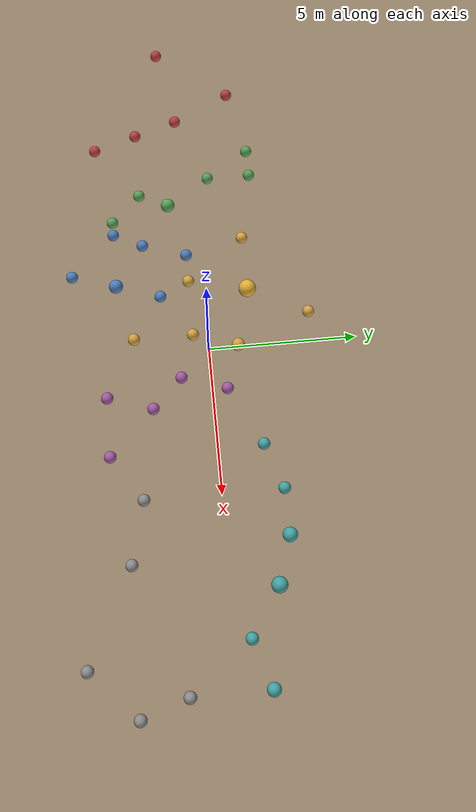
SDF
<?xml version="1.0" ?>
<sdf version="1.8">
  <world name="default">
    <physics name="1ms" type="ignored">
      <max_step_size>0.001</max_step_size>
      <real_time_factor>1.0</real_time_factor>
    </physics>

    <plugin filename="gz-sim-physics-system" name="gz::sim::systems::Physics"></plugin>
    <plugin filename="gz-sim-user-commands-system" name="gz::sim::systems::UserCommands"></plugin>
    <plugin filename="gz-sim-scene-broadcaster-system" name="gz::sim::systems::SceneBroadcaster"></plugin>

    <scene>
      <ambient>0.6 0.6 0.65 1</ambient>
      <background>0.7 0.8 0.9 1</background>
      <sky>
        <clouds>
          <speed>0.12</speed>
        </clouds>
      </sky>
    </scene>

    <light type="directional" name="sun">
      <cast_shadows>true</cast_shadows>
      <pose>0 0 20 0 0 0</pose>
      <diffuse>0.9 0.88 0.8 1</diffuse>
      <specular>0.3 0.3 0.28 1</specular>
      <attenuation>
        <range>1000</range>
        <constant>0.9</constant>
        <linear>0.01</linear>
        <quadratic>0.001</quadratic>
      </attenuation>
      <direction>-0.35 0.25 -0.9</direction>
    </light>

    <model name="ground_plane">
      <static>true</static>
      <link name="link">
        <collision name="collision">
          <geometry>
            <plane>
              <normal>0 0 1</normal>
              <size>100 100</size>
            </plane>
          </geometry>
        </collision>
        <visual name="visual">
          <geometry>
            <plane>
              <normal>0 0 1</normal>
              <size>100 100</size>
            </plane>
          </geometry>
          <material>
            <ambient>0.55 0.48 0.38 1</ambient>
            <diffuse>0.60 0.52 0.42 1</diffuse>
            <specular>0.05 0.05 0.05 1</specular>
          </material>
        </visual>
      </link>
    </model>

    <model name="Gambela">
      <pose>-12.0 -1.0 0.2 0 0 0</pose>
      <static>true</static>
      <link name="link">
        <visual name="sphere">
          <geometry>
            <sphere><radius>0.2</radius></sphere>
          </geometry>
          <material>
            <ambient>0.75 0.25 0.25 1</ambient>
            <diffuse>0.75 0.25 0.25 1</diffuse>
            <specular>0.3 0.3 0.3 1</specular>
          </material>
        </visual>
      </link>
    </model>

    <model name="Dembi_Dollo">
      <pose>-10.0 1.5 0.2 0 0 0</pose>
      <static>true</static>
      <link name="link">
        <visual name="sphere">
          <geometry>
            <sphere><radius>0.2</radius></sphere>
          </geometry>
          <material>
            <ambient>0.75 0.25 0.25 1</ambient>
            <diffuse>0.75 0.25 0.25 1</diffuse>
            <specular>0.3 0.3 0.3 1</specular>
          </material>
        </visual>
      </link>
    </model>

    <model name="Gore">
      <pose>-9.0 -0.5 0.2 0 0 0</pose>
      <static>true</static>
      <link name="link">
        <visual name="sphere">
          <geometry>
            <sphere><radius>0.2</radius></sphere>
          </geometry>
          <material>
            <ambient>0.75 0.25 0.25 1</ambient>
            <diffuse>0.75 0.25 0.25 1</diffuse>
            <specular>0.3 0.3 0.3 1</specular>
          </material>
        </visual>
      </link>
    </model>

    <model name="Tepi">
      <pose>-8.5 -2.0 0.2 0 0 0</pose>
      <static>true</static>
      <link name="link">
        <visual name="sphere">
          <geometry>
            <sphere><radius>0.2</radius></sphere>
          </geometry>
          <material>
            <ambient>0.75 0.25 0.25 1</ambient>
            <diffuse>0.75 0.25 0.25 1</diffuse>
            <specular>0.3 0.3 0.3 1</specular>
          </material>
        </visual>
      </link>
    </model>

    <model name="Mezan_Teferi">
      <pose>-8.0 -3.5 0.2 0 0 0</pose>
      <static>true</static>
      <link name="link">
        <visual name="sphere">
          <geometry>
            <sphere><radius>0.2</radius></sphere>
          </geometry>
          <material>
            <ambient>0.75 0.25 0.25 1</ambient>
            <diffuse>0.75 0.25 0.25 1</diffuse>
            <specular>0.3 0.3 0.3 1</specular>
          </material>
        </visual>
      </link>
    </model>

    <model name="Gimbi">
      <pose>-7.5 2.0 0.2 0 0 0</pose>
      <static>true</static>
      <link name="link">
        <visual name="sphere">
          <geometry>
            <sphere><radius>0.2</radius></sphere>
          </geometry>
          <material>
            <ambient>0.35 0.65 0.35 1</ambient>
            <diffuse>0.35 0.65 0.35 1</diffuse>
            <specular>0.3 0.3 0.3 1</specular>
          </material>
        </visual>
      </link>
    </model>

    <model name="Nekemte">
      <pose>-6.5 2.0 0.2 0 0 0</pose>
      <static>true</static>
      <link name="link">
        <visual name="sphere">
          <geometry>
            <sphere><radius>0.2</radius></sphere>
          </geometry>
          <material>
            <ambient>0.35 0.65 0.35 1</ambient>
            <diffuse>0.35 0.65 0.35 1</diffuse>
            <specular>0.3 0.3 0.3 1</specular>
          </material>
        </visual>
      </link>
    </model>

    <model name="Bedelle">
      <pose>-6.5 0.5 0.2 0 0 0</pose>
      <static>true</static>
      <link name="link">
        <visual name="sphere">
          <geometry>
            <sphere><radius>0.2</radius></sphere>
          </geometry>
          <material>
            <ambient>0.35 0.65 0.35 1</ambient>
            <diffuse>0.35 0.65 0.35 1</diffuse>
            <specular>0.3 0.3 0.3 1</specular>
          </material>
        </visual>
      </link>
    </model>

    <model name="Jimma">
      <pose>-5.5 -1.0 0.24 0 0 0</pose>
      <static>true</static>
      <link name="link">
        <visual name="sphere">
          <geometry>
            <sphere><radius>0.24</radius></sphere>
          </geometry>
          <material>
            <ambient>0.35 0.65 0.35 1</ambient>
            <diffuse>0.35 0.65 0.35 1</diffuse>
            <specular>0.3 0.3 0.3 1</specular>
          </material>
        </visual>
      </link>
    </model>

    <model name="Bonga">
      <pose>-6.0 -2.0 0.2 0 0 0</pose>
      <static>true</static>
      <link name="link">
        <visual name="sphere">
          <geometry>
            <sphere><radius>0.2</radius></sphere>
          </geometry>
          <material>
            <ambient>0.35 0.65 0.35 1</ambient>
            <diffuse>0.35 0.65 0.35 1</diffuse>
            <specular>0.3 0.3 0.3 1</specular>
          </material>
        </visual>
      </link>
    </model>

    <model name="Dawro">
      <pose>-5.0 -3.0 0.2 0 0 0</pose>
      <static>true</static>
      <link name="link">
        <visual name="sphere">
          <geometry>
            <sphere><radius>0.2</radius></sphere>
          </geometry>
          <material>
            <ambient>0.35 0.65 0.35 1</ambient>
            <diffuse>0.35 0.65 0.35 1</diffuse>
            <specular>0.3 0.3 0.3 1</specular>
          </material>
        </visual>
      </link>
    </model>

    <model name="Wolkite">
      <pose>-3.5 -0.5 0.2 0 0 0</pose>
      <static>true</static>
      <link name="link">
        <visual name="sphere">
          <geometry>
            <sphere><radius>0.2</radius></sphere>
          </geometry>
          <material>
            <ambient>0.3 0.5 0.75 1</ambient>
            <diffuse>0.3 0.5 0.75 1</diffuse>
            <specular>0.3 0.3 0.3 1</specular>
          </material>
        </visual>
      </link>
    </model>

    <model name="Hossana">
      <pose>-4.0 -2.0 0.2 0 0 0</pose>
      <static>true</static>
      <link name="link">
        <visual name="sphere">
          <geometry>
            <sphere><radius>0.2</radius></sphere>
          </geometry>
          <material>
            <ambient>0.3 0.5 0.75 1</ambient>
            <diffuse>0.3 0.5 0.75 1</diffuse>
            <specular>0.3 0.3 0.3 1</specular>
          </material>
        </visual>
      </link>
    </model>

    <model name="Wolait_Sodo">
      <pose>-4.5 -3.0 0.2 0 0 0</pose>
      <static>true</static>
      <link name="link">
        <visual name="sphere">
          <geometry>
            <sphere><radius>0.2</radius></sphere>
          </geometry>
          <material>
            <ambient>0.3 0.5 0.75 1</ambient>
            <diffuse>0.3 0.5 0.75 1</diffuse>
            <specular>0.3 0.3 0.3 1</specular>
          </material>
        </visual>
      </link>
    </model>

    <model name="Dilla">
      <pose>-3.0 -4.5 0.2 0 0 0</pose>
      <static>true</static>
      <link name="link">
        <visual name="sphere">
          <geometry>
            <sphere><radius>0.2</radius></sphere>
          </geometry>
          <material>
            <ambient>0.3 0.5 0.75 1</ambient>
            <diffuse>0.3 0.5 0.75 1</diffuse>
            <specular>0.3 0.3 0.3 1</specular>
          </material>
        </visual>
      </link>
    </model>

    <model name="Ambo">
      <pose>-4.0 1.5 0.2 0 0 0</pose>
      <static>true</static>
      <link name="link">
        <visual name="sphere">
          <geometry>
            <sphere><radius>0.2</radius></sphere>
          </geometry>
          <material>
            <ambient>0.85 0.65 0.25 1</ambient>
            <diffuse>0.85 0.65 0.25 1</diffuse>
            <specular>0.3 0.3 0.3 1</specular>
          </material>
        </visual>
      </link>
    </model>

    <model name="Addis_Ababa">
      <pose>-2.0 1.5 0.30000000000000004 0 0 0</pose>
      <static>true</static>
      <link name="link">
        <visual name="sphere">
          <geometry>
            <sphere><radius>0.30000000000000004</radius></sphere>
          </geometry>
          <material>
            <ambient>0.9 0.7 0.2 1</ambient>
            <diffuse>0.9 0.7 0.2 1</diffuse>
            <specular>0.3 0.3 0.3 1</specular>
          </material>
        </visual>
      </link>
    </model>

    <model name="Debra_Birhan">
      <pose>-1.0 3.5 0.2 0 0 0</pose>
      <static>true</static>
      <link name="link">
        <visual name="sphere">
          <geometry>
            <sphere><radius>0.2</radius></sphere>
          </geometry>
          <material>
            <ambient>0.85 0.65 0.25 1</ambient>
            <diffuse>0.85 0.65 0.25 1</diffuse>
            <specular>0.3 0.3 0.3 1</specular>
          </material>
        </visual>
      </link>
    </model>

    <model name="Buta_Jirra">
      <pose>-2.5 -0.5 0.2 0 0 0</pose>
      <static>true</static>
      <link name="link">
        <visual name="sphere">
          <geometry>
            <sphere><radius>0.2</radius></sphere>
          </geometry>
          <material>
            <ambient>0.85 0.65 0.25 1</ambient>
            <diffuse>0.85 0.65 0.25 1</diffuse>
            <specular>0.3 0.3 0.3 1</specular>
          </material>
        </visual>
      </link>
    </model>

    <model name="Worabe">
      <pose>-2.0 -1.5 0.2 0 0 0</pose>
      <static>true</static>
      <link name="link">
        <visual name="sphere">
          <geometry>
            <sphere><radius>0.2</radius></sphere>
          </geometry>
          <material>
            <ambient>0.3 0.5 0.75 1</ambient>
            <diffuse>0.3 0.5 0.75 1</diffuse>
            <specular>0.3 0.3 0.3 1</specular>
          </material>
        </visual>
      </link>
    </model>

    <model name="Hawassa">
      <pose>-2.5 -3.0 0.24 0 0 0</pose>
      <static>true</static>
      <link name="link">
        <visual name="sphere">
          <geometry>
            <sphere><radius>0.24</radius></sphere>
          </geometry>
          <material>
            <ambient>0.3 0.5 0.75 1</ambient>
            <diffuse>0.3 0.5 0.75 1</diffuse>
            <specular>0.3 0.3 0.3 1</specular>
          </material>
        </visual>
      </link>
    </model>

    <model name="Adama">
      <pose>0.0 1.0 0.22000000000000003 0 0 0</pose>
      <static>true</static>
      <link name="link">
        <visual name="sphere">
          <geometry>
            <sphere><radius>0.22000000000000003</radius></sphere>
          </geometry>
          <material>
            <ambient>0.85 0.65 0.25 1</ambient>
            <diffuse>0.85 0.65 0.25 1</diffuse>
            <specular>0.3 0.3 0.3 1</specular>
          </material>
        </visual>
      </link>
    </model>

    <model name="Batu">
      <pose>-0.5 -0.5 0.2 0 0 0</pose>
      <static>true</static>
      <link name="link">
        <visual name="sphere">
          <geometry>
            <sphere><radius>0.2</radius></sphere>
          </geometry>
          <material>
            <ambient>0.85 0.65 0.25 1</ambient>
            <diffuse>0.85 0.65 0.25 1</diffuse>
            <specular>0.3 0.3 0.3 1</specular>
          </material>
        </visual>
      </link>
    </model>

    <model name="Shashemene">
      <pose>-0.5 -2.5 0.2 0 0 0</pose>
      <static>true</static>
      <link name="link">
        <visual name="sphere">
          <geometry>
            <sphere><radius>0.2</radius></sphere>
          </geometry>
          <material>
            <ambient>0.85 0.65 0.25 1</ambient>
            <diffuse>0.85 0.65 0.25 1</diffuse>
            <specular>0.3 0.3 0.3 1</specular>
          </material>
        </visual>
      </link>
    </model>

    <model name="Matahara">
      <pose>1.5 0.5 0.2 0 0 0</pose>
      <static>true</static>
      <link name="link">
        <visual name="sphere">
          <geometry>
            <sphere><radius>0.2</radius></sphere>
          </geometry>
          <material>
            <ambient>0.65 0.35 0.65 1</ambient>
            <diffuse>0.65 0.35 0.65 1</diffuse>
            <specular>0.3 0.3 0.3 1</specular>
          </material>
        </visual>
      </link>
    </model>

    <model name="Assella">
      <pose>1.0 -1.0 0.2 0 0 0</pose>
      <static>true</static>
      <link name="link">
        <visual name="sphere">
          <geometry>
            <sphere><radius>0.2</radius></sphere>
          </geometry>
          <material>
            <ambient>0.65 0.35 0.65 1</ambient>
            <diffuse>0.65 0.35 0.65 1</diffuse>
            <specular>0.3 0.3 0.3 1</specular>
          </material>
        </visual>
      </link>
    </model>

    <model name="Assasa">
      <pose>2.0 -2.0 0.2 0 0 0</pose>
      <static>true</static>
      <link name="link">
        <visual name="sphere">
          <geometry>
            <sphere><radius>0.2</radius></sphere>
          </geometry>
          <material>
            <ambient>0.65 0.35 0.65 1</ambient>
            <diffuse>0.65 0.35 0.65 1</diffuse>
            <specular>0.3 0.3 0.3 1</specular>
          </material>
        </visual>
      </link>
    </model>

    <model name="Dodola">
      <pose>1.5 -3.5 0.2 0 0 0</pose>
      <static>true</static>
      <link name="link">
        <visual name="sphere">
          <geometry>
            <sphere><radius>0.2</radius></sphere>
          </geometry>
          <material>
            <ambient>0.65 0.35 0.65 1</ambient>
            <diffuse>0.65 0.35 0.65 1</diffuse>
            <specular>0.3 0.3 0.3 1</specular>
          </material>
        </visual>
      </link>
    </model>

    <model name="Awash">
      <pose>3.5 1.5 0.2 0 0 0</pose>
      <static>true</static>
      <link name="link">
        <visual name="sphere">
          <geometry>
            <sphere><radius>0.2</radius></sphere>
          </geometry>
          <material>
            <ambient>0.25 0.65 0.65 1</ambient>
            <diffuse>0.25 0.65 0.65 1</diffuse>
            <specular>0.3 0.3 0.3 1</specular>
          </material>
        </visual>
      </link>
    </model>

    <model name="Chiro">
      <pose>5.0 2.0 0.2 0 0 0</pose>
      <static>true</static>
      <link name="link">
        <visual name="sphere">
          <geometry>
            <sphere><radius>0.2</radius></sphere>
          </geometry>
          <material>
            <ambient>0.25 0.65 0.65 1</ambient>
            <diffuse>0.25 0.65 0.65 1</diffuse>
            <specular>0.3 0.3 0.3 1</specular>
          </material>
        </visual>
      </link>
    </model>

    <model name="Dire_Dawa">
      <pose>6.5 2.0 0.24 0 0 0</pose>
      <static>true</static>
      <link name="link">
        <visual name="sphere">
          <geometry>
            <sphere><radius>0.24</radius></sphere>
          </geometry>
          <material>
            <ambient>0.25 0.65 0.65 1</ambient>
            <diffuse>0.25 0.65 0.65 1</diffuse>
            <specular>0.3 0.3 0.3 1</specular>
          </material>
        </visual>
      </link>
    </model>

    <model name="Harar">
      <pose>8.0 1.5 0.26 0 0 0</pose>
      <static>true</static>
      <link name="link">
        <visual name="sphere">
          <geometry>
            <sphere><radius>0.26</radius></sphere>
          </geometry>
          <material>
            <ambient>0.25 0.65 0.65 1</ambient>
            <diffuse>0.25 0.65 0.65 1</diffuse>
            <specular>0.3 0.3 0.3 1</specular>
          </material>
        </visual>
      </link>
    </model>

    <model name="Babile">
      <pose>9.5 0.5 0.2 0 0 0</pose>
      <static>true</static>
      <link name="link">
        <visual name="sphere">
          <geometry>
            <sphere><radius>0.2</radius></sphere>
          </geometry>
          <material>
            <ambient>0.25 0.65 0.65 1</ambient>
            <diffuse>0.25 0.65 0.65 1</diffuse>
            <specular>0.3 0.3 0.3 1</specular>
          </material>
        </visual>
      </link>
    </model>

    <model name="Jijiga">
      <pose>11.0 1.0 0.22000000000000003 0 0 0</pose>
      <static>true</static>
      <link name="link">
        <visual name="sphere">
          <geometry>
            <sphere><radius>0.22000000000000003</radius></sphere>
          </geometry>
          <material>
            <ambient>0.25 0.65 0.65 1</ambient>
            <diffuse>0.25 0.65 0.65 1</diffuse>
            <specular>0.3 0.3 0.3 1</specular>
          </material>
        </visual>
      </link>
    </model>

    <model name="Dega_Habur">
      <pose>11.0 -1.5 0.2 0 0 0</pose>
      <static>true</static>
      <link name="link">
        <visual name="sphere">
          <geometry>
            <sphere><radius>0.2</radius></sphere>
          </geometry>
          <material>
            <ambient>0.55 0.55 0.55 1</ambient>
            <diffuse>0.55 0.55 0.55 1</diffuse>
            <specular>0.3 0.3 0.3 1</specular>
          </material>
        </visual>
      </link>
    </model>

    <model name="Kebri_Dehar">
      <pose>11.5 -3.0 0.2 0 0 0</pose>
      <static>true</static>
      <link name="link">
        <visual name="sphere">
          <geometry>
            <sphere><radius>0.2</radius></sphere>
          </geometry>
          <material>
            <ambient>0.55 0.55 0.55 1</ambient>
            <diffuse>0.55 0.55 0.55 1</diffuse>
            <specular>0.3 0.3 0.3 1</specular>
          </material>
        </visual>
      </link>
    </model>

    <model name="Gode">
      <pose>10.0 -4.5 0.2 0 0 0</pose>
      <static>true</static>
      <link name="link">
        <visual name="sphere">
          <geometry>
            <sphere><radius>0.2</radius></sphere>
          </geometry>
          <material>
            <ambient>0.55 0.55 0.55 1</ambient>
            <diffuse>0.55 0.55 0.55 1</diffuse>
            <specular>0.3 0.3 0.3 1</specular>
          </material>
        </visual>
      </link>
    </model>

    <model name="Bale">
      <pose>3.5 -3.5 0.2 0 0 0</pose>
      <static>true</static>
      <link name="link">
        <visual name="sphere">
          <geometry>
            <sphere><radius>0.2</radius></sphere>
          </geometry>
          <material>
            <ambient>0.65 0.35 0.65 1</ambient>
            <diffuse>0.65 0.35 0.65 1</diffuse>
            <specular>0.3 0.3 0.3 1</specular>
          </material>
        </visual>
      </link>
    </model>

    <model name="Goba">
      <pose>5.0 -2.5 0.2 0 0 0</pose>
      <static>true</static>
      <link name="link">
        <visual name="sphere">
          <geometry>
            <sphere><radius>0.2</radius></sphere>
          </geometry>
          <material>
            <ambient>0.55 0.55 0.55 1</ambient>
            <diffuse>0.55 0.55 0.55 1</diffuse>
            <specular>0.3 0.3 0.3 1</specular>
          </material>
        </visual>
      </link>
    </model>

    <model name="Sof_Oumer">
      <pose>7.0 -3.0 0.2 0 0 0</pose>
      <static>true</static>
      <link name="link">
        <visual name="sphere">
          <geometry>
            <sphere><radius>0.2</radius></sphere>
          </geometry>
          <material>
            <ambient>0.55 0.55 0.55 1</ambient>
            <diffuse>0.55 0.55 0.55 1</diffuse>
            <specular>0.3 0.3 0.3 1</specular>
          </material>
        </visual>
      </link>
    </model>

    <model name="three_wheeled_robot">
      <pose>-2.0 1.5 0.15 0 0 0</pose>
      <link name="base_link">
        <inertial><mass>5</mass><inertia><ixx>0.1</ixx><ixy>0</ixy><ixz>0</ixz><iyy>0.1</iyy><iyz>0</iyz><izz>0.1</izz></inertia></inertial>
        <visual name="visual">
          <geometry><cylinder><radius>0.2</radius><length>0.1</length></cylinder></geometry>
          <material><ambient>0.2 0.3 0.75 1</ambient><diffuse>0.25 0.35 0.8 1</diffuse><specular>0.2 0.2 0.2 1</specular></material>
        </visual>
        <collision name="collision"><geometry><cylinder><radius>0.2</radius><length>0.1</length></cylinder></geometry></collision>
        <sensor name="imu_sensor" type="imu"><topic>imu</topic><update_rate>100</update_rate><always_on>1</always_on></sensor>
      </link>
      <link name="caster_wheel">
        <pose relative_to="base_link">0.15 0 -0.05 0 0 0</pose>
        <inertial><mass>1</mass><inertia><ixx>0.01</ixx><ixy>0</ixy><ixz>0</ixz><iyy>0.01</iyy><iyz>0</iyz><izz>0.01</izz></inertia></inertial>
        <visual name="visual"><geometry><sphere><radius>0.05</radius></sphere></geometry><material><ambient>0.15 0.15 0.15 1</ambient><diffuse>0.2 0.2 0.2 1</diffuse></material></visual>
        <collision name="collision"><geometry><sphere><radius>0.05</radius></sphere></geometry></collision>
      </link>
      <joint name="caster_joint" type="fixed"><parent>base_link</parent><child>caster_wheel</child></joint>
      <link name="left_wheel">
        <pose relative_to="base_link">-0.1 0.22 -0.05 -1.5707 0 0</pose>
        <inertial><mass>1</mass><inertia><ixx>0.01</ixx><ixy>0</ixy><ixz>0</ixz><iyy>0.01</iyy><iyz>0</iyz><izz>0.01</izz></inertia></inertial>
        <visual name="visual"><geometry><cylinder><radius>0.1</radius><length>0.05</length></cylinder></geometry><material><ambient>0.15 0.15 0.15 1</ambient><diffuse>0.2 0.2 0.2 1</diffuse></material></visual>
        <collision name="collision"><geometry><cylinder><radius>0.1</radius><length>0.05</length></cylinder></geometry></collision>
      </link>
      <joint name="left_wheel_joint" type="revolute"><parent>base_link</parent><child>left_wheel</child><axis><xyz>0 0 1</xyz></axis></joint>
      <link name="right_wheel">
        <pose relative_to="base_link">-0.1 -0.22 -0.05 -1.5707 0 0</pose>
        <inertial><mass>1</mass><inertia><ixx>0.01</ixx><ixy>0</ixy><ixz>0</ixz><iyy>0.01</iyy><iyz>0</iyz><izz>0.01</izz></inertia></inertial>
        <visual name="visual"><geometry><cylinder><radius>0.1</radius><length>0.05</length></cylinder></geometry><material><ambient>0.15 0.15 0.15 1</ambient><diffuse>0.2 0.2 0.2 1</diffuse></material></visual>
        <collision name="collision"><geometry><cylinder><radius>0.1</radius><length>0.05</length></cylinder></geometry></collision>
      </link>
      <joint name="right_wheel_joint" type="revolute"><parent>base_link</parent><child>right_wheel</child><axis><xyz>0 0 1</xyz></axis></joint>
      <link name="lidar_link">
        <pose relative_to="base_link">0 0 0.07 0 0 0</pose>
        <inertial><mass>0.1</mass><inertia><ixx>0.001</ixx><ixy>0</ixy><ixz>0</ixz><iyy>0.001</iyy><iyz>0</iyz><izz>0.001</izz></inertia></inertial>
        <visual name="visual"><geometry><cylinder><radius>0.03</radius><length>0.04</length></cylinder></geometry><material><ambient>0.75 0.2 0.2 1</ambient><diffuse>0.8 0.25 0.25 1</diffuse></material></visual>
        <sensor name="lidar" type="gpu_lidar"><topic>lidar</topic><update_rate>10</update_rate><lidar><scan><horizontal><samples>360</samples><resolution>1</resolution><min_angle>-3.14159</min_angle><max_angle>3.14159</max_angle></horizontal></scan><range><min>0.1</min><max>10.0</max></range></lidar><always_on>1</always_on><visualize>true</visualize></sensor>
      </link>
      <joint name="lidar_joint" type="fixed"><parent>base_link</parent><child>lidar_link</child></joint>
      <link name="camera_link">
        <pose relative_to="base_link">0.2 0 0.05 0 0 0</pose>
        <inertial><mass>0.05</mass><inertia><ixx>0.0001</ixx><ixy>0</ixy><ixz>0</ixz><iyy>0.0001</iyy><iyz>0</iyz><izz>0.0001</izz></inertia></inertial>
        <visual name="visual"><geometry><box><size>0.02 0.05 0.02</size></box></geometry><material><ambient>0.2 0.65 0.3 1</ambient><diffuse>0.25 0.7 0.35 1</diffuse></material></visual>
        <sensor name="camera" type="camera"><topic>camera</topic><update_rate>30</update_rate><camera><horizontal_fov>1.047</horizontal_fov><image><width>640</width><height>480</height></image><clip><near>0.1</near><far>100</far></clip></camera><always_on>1</always_on><visualize>true</visualize></sensor>
      </link>
      <joint name="camera_joint" type="fixed"><parent>base_link</parent><child>camera_link</child></joint>
      <plugin filename="gz-sim-diff-drive-system" name="gz::sim::systems::DiffDrive">
        <left_joint>left_wheel_joint</left_joint>
        <right_joint>right_wheel_joint</right_joint>
        <wheel_separation>0.44</wheel_separation>
        <wheel_radius>0.1</wheel_radius>
        <topic>cmd_vel</topic>
        <odom_topic>odom</odom_topic>
      </plugin>
    </model>

  </world>
</sdf>
